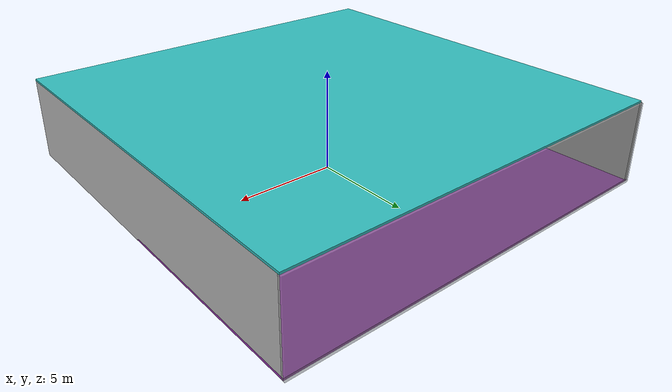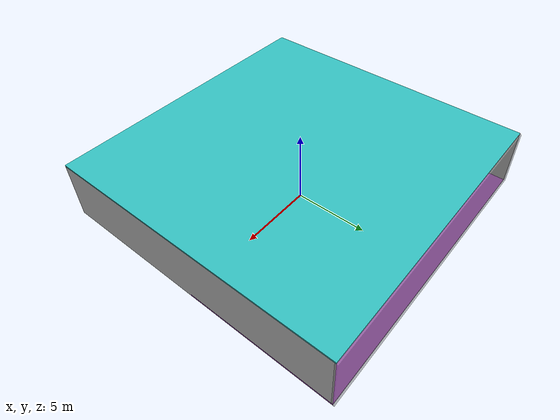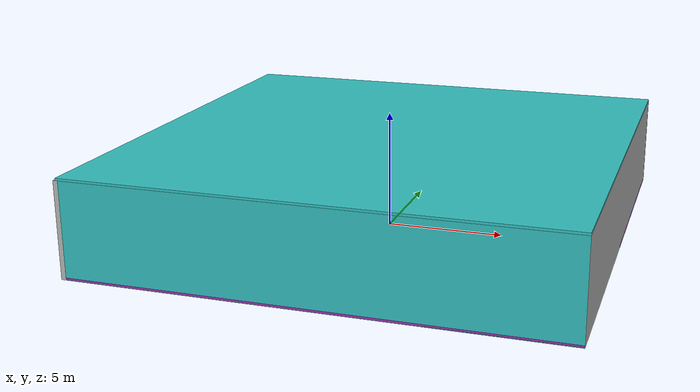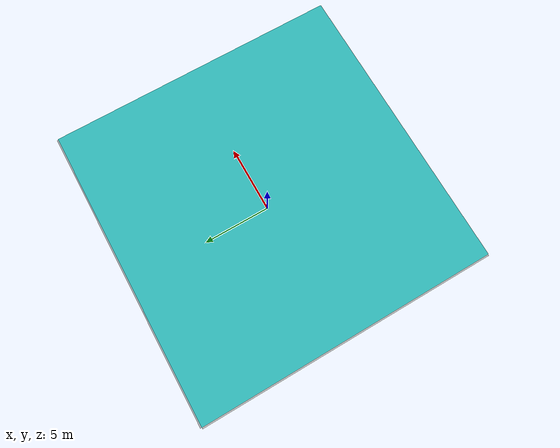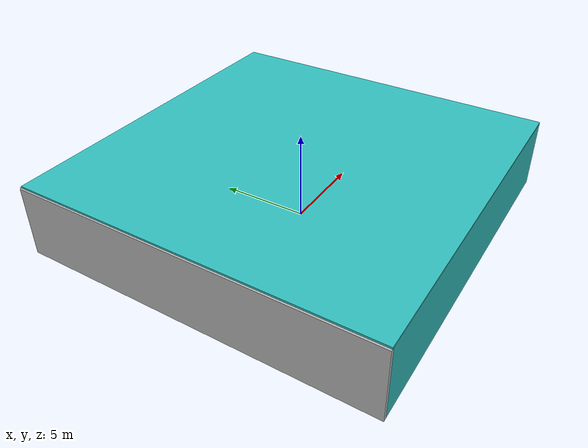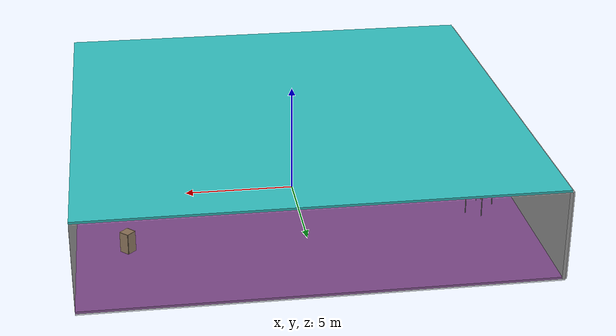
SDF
<sdf version="1.4">
 <world name="default">
  <physics type="ode">
   <max_step_size>0.001</max_step_size>
   <real_time_factor>1</real_time_factor>
   <real_time_update_rate>1000</real_time_update_rate>
   <gravity>0 0 -9.8</gravity>
  </physics>
  <scene><ambient>0.4 0.4 0.4 1</ambient><background>0.7 0.7 0.7 1</background><shadows>1</shadows></scene>
  <model name="Surrounding">
   <static>1</static>
   <link name="Ceiling">
    <collision name="Ceiling_Collision"><geometry><box><size>20 20 0.1</size></box></geometry></collision>
    <visual name="Ceiling_Visual">
     <geometry><box><size>20 20 0.1</size></box></geometry>
     <material>
      <script><uri>file://media/materials/scripts/gazebo.material</uri><name>Gazebo/TurquoiseGlow</name></script>
     </material>
    </visual>
    <pose>0 0 4.05 0 0 0</pose>
   </link>
   <link name="Wall_South">
    <collision name="Wall_South_Collision">
     <geometry><box><size>20 0 4</size></box></geometry>
     <pose>0 0 2 0 -0 0</pose>
    </collision>
    <visual name="Wall_South_Visual">
     <pose>0 0 2 0 -0 0</pose>
     <geometry><box><size>20 0 4</size></box></geometry>
     <material>
      <script><uri>file://media/materials/scripts/gazebo.material</uri><name>Gazebo/TurquoiseGlow</name></script>
     </material>
    </visual>
    <velocity_decay><linear>0</linear><angular>0</angular></velocity_decay>
    <pose>0 -10 0 0 -0 0</pose>
   </link>
   <link name="Wall_East">
    <collision name="Wall_21_Collision">
     <geometry><box><size>20 0 4</size></box></geometry>
     <pose>0 0 2 0 -0 0</pose>
    </collision>
    <visual name="Wall_21_Visual">
     <pose>0 0 2 0 -0 0</pose>
     <geometry><box><size>20 0 4</size></box></geometry>
     <material>
      <script><uri>file://media/materials/scripts/gazebo.material</uri><name>Gazebo/Pioneer2Body</name></script>
     </material>
    </visual>
    <velocity_decay><linear>0</linear><angular>0</angular></velocity_decay>
    <pose>10 0 0 0 -0 1.5708</pose>
   </link>
   <link name="Wall_North">
    <collision name="Wall_22_Collision">
     <geometry><box><size>20 0.2 4</size></box></geometry>
     <pose>0 0 2 0 -0 0</pose>
    </collision>
    <visual name="Wall_22_Visual">
     <pose>0 0 2 0 -0 0</pose>
     <geometry><box><size>20 0.2 4</size></box></geometry>
     <material>
      <script><uri>file://media/materials/scripts/gazebo.material</uri><name>Gazebo/GreyTransparent</name></script>
     </material>
    </visual>
    <velocity_decay><linear>0</linear><angular>0</angular></velocity_decay>
    <pose>0 10 0 0 -0 0</pose>
   </link>
   <link name="Wall_West">
    <collision name="Wall_23_Collision">
     <geometry><box><size>20 0.2 4</size></box></geometry>
     <pose>0 0 2 0 -0 0</pose>
    </collision>
    <visual name="Wall_23_Visual">
     <pose>0 0 2 0 -0 0</pose>
     <geometry><box><size>20 0.2 4</size></box></geometry>
     <material>
      <script><uri>file://media/materials/scripts/gazebo.material</uri><name>Gazebo/LightOn</name></script>
     </material>
    </visual>
    <velocity_decay><linear>0</linear><angular>0</angular></velocity_decay>
    <pose>-10 0 0 0 0 -1.5708</pose>
   </link>
   <link name="Ground_link">
    <collision name="collision">
     <pose>0 0 .05 0 -0 0</pose>
     <geometry><box><size>20 20 0.1</size></box></geometry>
    </collision>
    <visual name="visual">
     <pose>0 0 .05 0 -0 0</pose>
     <geometry><box><size>20 20 0.1</size></box></geometry>
     <material>
      <script><uri>file://media/materials/scripts/gazebo.material</uri><name>Gazebo/PurpleGlow</name></script>
     </material>
    </visual>
   </link>
   <static>1</static>
  </model>
  <spherical_coordinates>
   <surface_model>EARTH_WGS84</surface_model>
   <latitude_deg>0</latitude_deg>
   <longitude_deg>0</longitude_deg>
   <elevation>0</elevation>
   <heading_deg>0</heading_deg>
  </spherical_coordinates>
  <light name="lightball_0" type="diffuse">
   <diffuse>0.8 0.8 0.8 1</diffuse>
   <specular>0.2 0.2 0.2 1</specular>
   <attenuation>
    <range>100</range>
    <constant>0.7</constant>
    <linear>0.01</linear>
    <quadratic>0.001</quadratic>
   </attenuation>
   <direction>-0.5 0.1 -0.9</direction>
   <pose>-0.513120753358 -2.41582941958 1.52443933737 0 0 0</pose>
  </light>
  <light name="lightball_1" type="diffuse">
   <diffuse>0.8 0.8 0.8 1</diffuse>
   <specular>0.2 0.2 0.2 1</specular>
   <attenuation>
    <range>100</range>
    <constant>0.7</constant>
    <linear>0.01</linear>
    <quadratic>0.001</quadratic>
   </attenuation>
   <direction>-0.5 0.1 -0.9</direction>
   <pose>-2.80099224887 -5.0242598981 3.2743007639 0 0 0</pose>
  </light>
  <light name="lightball_2" type="diffuse">
   <diffuse>0.8 0.8 0.8 1</diffuse>
   <specular>0.2 0.2 0.2 1</specular>
   <attenuation>
    <range>100</range>
    <constant>0.7</constant>
    <linear>0.01</linear>
    <quadratic>0.001</quadratic>
   </attenuation>
   <direction>-0.5 0.1 -0.9</direction>
   <pose>-3.60664510113 -2.12445348963 3.07437505596 0 0 0</pose>
  </light>
  <light name="lightball_3" type="diffuse">
   <diffuse>0.8 0.8 0.8 1</diffuse>
   <specular>0.2 0.2 0.2 1</specular>
   <attenuation>
    <range>100</range>
    <constant>0.7</constant>
    <linear>0.01</linear>
    <quadratic>0.001</quadratic>
   </attenuation>
   <direction>-0.5 0.1 -0.9</direction>
   <pose>-6.11513351772 -2.80384891005 2.51624385701 0 0 0</pose>
  </light>
  <include><uri>model://table</uri><pose>-8.09584786456 3.5103178158 0 0 0 0.943489182821</pose></include>
  <include>
   <uri>model://robocup_3Dsim_goal</uri>
   <pose>-0.766539018044 -7.2846070638 0 0 0 2.81664518617</pose>
  </include>
  <include><uri>model://table</uri><pose>4.6423073384 -4.57458047096 0 0 0 1.07236010008</pose></include>
  <include><uri>model://cabinet</uri><pose>7.79199062787 5.31019605774 0 0 0 2.36670926917</pose></include>
 </world>
</sdf>

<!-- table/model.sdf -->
<sdf version="1.5">
  <model name="table">
    <static>true</static>
    <link name="link">
      <collision name="surface">
        <pose>0 0 1.0 0 0 0</pose>
        <geometry>
          <box>
            <size>1.5 0.8 0.03</size>
          </box>
        </geometry>
        <surface>
          <friction>
            <ode>
              <mu>0.6</mu>
              <mu2>0.6</mu2>
            </ode>
          </friction>
        </surface>
      </collision>
      <visual name="visual1">
        <pose>0 0 1.0 0 0 0</pose>
        <geometry>
          <box>
            <size>1.5 0.8 0.03</size>
          </box>
        </geometry>
        <material>
          <script>
            <uri>model://media/materials/scripts/gazebo.material</uri>
            <name>Gazebo/Wood</name>
          </script>
        </material>
      </visual>
      <collision name="front_left_leg">
        <pose>0.68 0.38 0.5 0 0 0</pose>
        <geometry>
          <cylinder>
            <radius>0.02</radius>
            <length>1.0</length>
          </cylinder>
        </geometry>
      </collision>
      <visual name="front_left_leg">
        <pose>0.68 0.38 0.5 0 0 0</pose>
        <geometry>
          <cylinder>
            <radius>0.02</radius>
            <length>1.0</length>
          </cylinder>
        </geometry>
        <material>
          <script>
            <uri>model://media/materials/scripts/gazebo.material</uri>
            <name>Gazebo/Grey</name>
          </script>
        </material>
      </visual>
      <collision name="front_right_leg">
        <pose>0.68 -0.38 0.5 0 0 0</pose>
        <geometry>
          <cylinder>
            <radius>0.02</radius>
            <length>1.0</length>
          </cylinder>
        </geometry>
      </collision>
      <visual name="front_right_leg">
        <pose>0.68 -0.38 0.5 0 0 0</pose>
        <geometry>
          <cylinder>
            <radius>0.02</radius>
            <length>1.0</length>
          </cylinder>
        </geometry>
        <material>
          <script>
            <uri>model://media/materials/scripts/gazebo.material</uri>
            <name>Gazebo/Grey</name>
          </script>
        </material>
      </visual>
      <collision name="back_right_leg">
        <pose>-0.68 -0.38 0.5 0 0 0</pose>
        <geometry>
          <cylinder>
            <radius>0.02</radius>
            <length>1.0</length>
          </cylinder>
        </geometry>
      </collision>
      <visual name="back_right_leg">
        <pose>-0.68 -0.38 0.5 0 0 0</pose>
        <geometry>
          <cylinder>
            <radius>0.02</radius>
            <length>1.0</length>
          </cylinder>
        </geometry>
        <material>
          <script>
            <uri>model://media/materials/scripts/gazebo.material</uri>
            <name>Gazebo/Grey</name>
          </script>
        </material>
      </visual>
      <collision name="back_left_leg">
        <pose>-0.68 0.38 0.5 0 0 0</pose>
        <geometry>
          <cylinder>
            <radius>0.02</radius>
            <length>1.0</length>
          </cylinder>
        </geometry>
      </collision>
      <visual name="back_left_leg">
        <pose>-0.68 0.38 0.5 0 0 0</pose>
        <geometry>
          <cylinder>
            <radius>0.02</radius>
            <length>1.0</length>
          </cylinder>
        </geometry>
        <material>
          <script>
            <uri>model://media/materials/scripts/gazebo.material</uri>
            <name>Gazebo/Grey</name>
          </script>
        </material>
      </visual>
    </link>
  </model>
</sdf>

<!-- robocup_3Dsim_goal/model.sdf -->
<sdf version="1.5">
  <model name="robocup_3d_goal">
    <static>true</static>
    <link name="left_post">
      <pose>0 1.05 0.45 0 0 0</pose>
      <collision name="collision">
        <geometry>
          <cylinder>
            <radius>0.05</radius>
            <length>0.9</length>
          </cylinder>
        </geometry>
      </collision>
      <visual name="visual">
        <geometry>
          <cylinder>
            <radius>0.05</radius>
            <length>0.9</length>
          </cylinder>
        </geometry>
        <material>
          <script>
            <uri>file://media/materials/scripts/gazebo.material</uri>
            <name>Gazebo/ZincYellow</name>
          </script>
        </material>
      </visual>
    </link>
    <link name="left_support_horiz_lower">
      <pose>0.30 1.05 0.01 0 0 0</pose>
      <collision name="collision">
        <geometry>
          <box>
            <size>0.50 0.02 0.02</size>
          </box>
        </geometry>
      </collision>
      <visual name="visual">
        <geometry>
          <box>
            <size>0.50 0.02 0.02</size>
          </box>
        </geometry>
        <material>
          <script>
            <uri>file://media/materials/scripts/gazebo.material</uri>
            <name>Gazebo/White</name>
          </script>
        </material>
      </visual>
    </link>
    <link name="left_support_horiz_upper">
      <pose>0.30 1.05 0.79 0 0 0</pose>
      <collision name="collision">
        <geometry>
          <box>
            <size>0.50 0.02 0.02</size>
          </box>
        </geometry>
      </collision>
      <visual name="visual">
        <geometry>
          <box>
            <size>0.50 0.02 0.02</size>
          </box>
        </geometry>
        <material>
          <script>
            <uri>file://media/materials/scripts/gazebo.material</uri>
            <name>Gazebo/White</name>
          </script>
        </material>
      </visual>
    </link>
    <link name="left_support_vertical">
      <pose>0.56 1.05 0.4 0 1.5708 0</pose>
      <collision name="collision">
        <geometry>
          <box>
            <size>0.80 0.02 0.02</size>
          </box>
        </geometry>
      </collision>
      <visual name="visual">
        <geometry>
          <box>
            <size>0.80 0.02 0.02</size>
          </box>
        </geometry>
        <material>
          <script>
            <uri>file://media/materials/scripts/gazebo.material</uri>
            <name>Gazebo/White</name>
          </script>
        </material>
      </visual>
    </link>
    <link name="right_support_horiz_lower">
      <pose>0.30 -1.05 0.01 0 0 0</pose>
      <collision name="collision">
        <geometry>
          <box>
            <size>0.50 0.02 0.02</size>
          </box>
        </geometry>
      </collision>
      <visual name="visual">
        <geometry>
          <box>
            <size>0.50 0.02 0.02</size>
          </box>
        </geometry>
        <material>
          <script>
            <uri>file://media/materials/scripts/gazebo.material</uri>
            <name>Gazebo/White</name>
          </script>
        </material>
      </visual>
    </link>
    <link name="right_support_horiz_upper">
      <pose>0.30 -1.05 0.79 0 0 0</pose>
      <collision name="collision">
        <geometry>
          <box>
            <size>0.50 0.02 0.02</size>
          </box>
        </geometry>
      </collision>
      <visual name="visual">
        <geometry>
          <box>
            <size>0.50 0.02 0.02</size>
          </box>
        </geometry>
        <material>
          <script>
            <uri>file://media/materials/scripts/gazebo.material</uri>
            <name>Gazebo/White</name>
          </script>
        </material>
      </visual>
    </link>
    <link name="right_support_vertical">
      <pose>0.56 -1.05 0.4 0 1.5708 0</pose>
      <collision name="collision">
        <geometry>
          <box>
            <size>0.80 0.02 0.02</size>
          </box>
        </geometry>
      </collision>
      <visual name="visual">
        <geometry>
          <box>
            <size>0.80 0.02 0.02</size>
          </box>
        </geometry>
        <material>
          <script>
            <uri>file://media/materials/scripts/gazebo.material</uri>
            <name>Gazebo/White</name>
          </script>
        </material>
      </visual>
    </link>
    <link name="center_support_horiz_lower">
      <pose>0.56 0 0.01 0 1.5708 0</pose>
      <collision name="collision">
        <geometry>
          <box>
            <size>0.02 2.08 0.02</size>
          </box>
        </geometry>
      </collision>
      <visual name="visual">
        <geometry>
          <box>
            <size>0.02 2.08 0.02</size>
          </box>
        </geometry>
        <material>
          <script>
            <uri>file://media/materials/scripts/gazebo.material</uri>
            <name>Gazebo/White</name>
          </script>
        </material>
      </visual>
    </link>
    <link name="center_support_horiz_upper">
      <pose>0.56 0 0.79 0 1.5708 0</pose>
      <collision name="collision">
        <geometry>
          <box>
            <size>0.02 2.08 0.02</size>
          </box>
        </geometry>
      </collision>
      <visual name="visual">
        <geometry>
          <box>
            <size>0.02 2.08 0.02</size>
          </box>
        </geometry>
        <material>
          <script>
            <uri>file://media/materials/scripts/gazebo.material</uri>
            <name>Gazebo/White</name>
          </script>
        </material>
      </visual>
    </link>
    <link name="right_post">
      <pose>0 -1.05 0.45 0 0 0</pose>
      <collision name="collision">
        <geometry>
          <cylinder>
            <radius>0.05</radius>
            <length>0.9</length>
          </cylinder>
        </geometry>
      </collision>
      <visual name="visual">
        <geometry>
          <cylinder>
            <radius>0.05</radius>
            <length>0.9</length>
          </cylinder>
        </geometry>
        <material>
          <script>
            <uri>file://media/materials/scripts/gazebo.material</uri>
            <name>Gazebo/ZincYellow</name>
          </script>
        </material>
      </visual>
    </link>
    <link name="crossbar">
      <pose>0 0 0.85 1.57 1.57 0</pose>
      <collision name="collision">
        <geometry>
          <cylinder>
            <radius>0.05</radius>
            <length>2.0</length>
          </cylinder>
        </geometry>
      </collision>
      <visual name="visual">
        <geometry>
          <cylinder>
            <radius>0.05</radius>
            <length>2.0</length>
          </cylinder>
        </geometry>
        <material>
          <script>
            <uri>file://media/materials/scripts/gazebo.material</uri>
            <name>Gazebo/ZincYellow</name>
          </script>
        </material>
      </visual>
    </link>
    <link name="center_net">
      <pose>0.56 0 0.40 0 0 0</pose>
      <collision name="collision">
        <geometry>
          <box>
            <size>0.01 2.1 0.80</size>
          </box>
        </geometry>
      </collision>
      <visual name="visual">
        <geometry>
          <box>
            <size>0.01 2.1 0.80</size>
          </box>
        </geometry>
        <material>
          <script>
            <uri>model://../model_source/models/robocup09_spl_field/materials/scripts/</uri>
            <uri>model://../model_source/models/robocup09_spl_field/materials/textures/</uri>
            <name>RoboCup/Net</name>
          </script>
        </material>
      </visual>
    </link>
    <link name="left_net">
      <pose>0.30 1.05 0.40 0 0 0</pose>
      <collision name="collision">
        <geometry>
          <box>
            <size>0.50 0.01 0.76</size>
          </box>
        </geometry>
      </collision>
      <visual name="visual">
        <geometry>
          <box>
            <size>0.50 0.01 0.76</size>
          </box>
        </geometry>
        <material>
          <script>
            <uri>model://../model_source/models/robocup09_spl_field/materials/scripts/</uri>
            <uri>model://../model_source/models/robocup09_spl_field/materials/textures/</uri>
            <name>RoboCup/Net</name>
          </script>
        </material>
      </visual>
    </link>
    <link name="right_net">
      <pose>0.30 -1.05 0.40 0 0 0</pose>
      <collision name="collision">
        <geometry>
          <box>
            <size>0.50 0.01 0.76</size>
          </box>
        </geometry>
      </collision>
      <visual name="visual">
        <geometry>
          <box>
            <size>0.50 0.01 0.76</size>
          </box>
        </geometry>
        <material>
          <script>
            <uri>model://../model_source/models/robocup09_spl_field/materials/scripts/</uri>
            <uri>model://../model_source/models/robocup09_spl_field/materials/textures/</uri>
            <name>RoboCup/Net</name>
          </script>
        </material>
      </visual>
    </link>
  </model>
</sdf>

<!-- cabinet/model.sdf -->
<sdf version="1.5">
  <model name="cabinet">
    <static>true</static>
    <link name="cabinet_bottom_plate">
      <inertial>
        <pose>0 0 -1 0 0 0</pose>
        <inertia>
          <ixx>2.050000</ixx>
          <ixy>0</ixy>
          <ixz>0</ixz>
          <iyy>2.050000</iyy>
          <iyz>0</iyz>
          <izz>2.050000</izz>
        </inertia>
        <mass>25.000000</mass>
      </inertial>
      <collision name="cabinet_bottom_plate_geom">
        <pose>0 0 0.010000 0 0 0</pose>
        <geometry>
          <box>
            <size>0.450000 0.450000 0.020000</size>
          </box>
        </geometry>
      </collision>
      <visual name="cabinet_bottom_plate_geom_visual">
        <pose>0 0 0.010000 0 0 0</pose>
        <geometry>
          <box>
            <size>0.450000 0.450000 0.020000</size>
          </box>
        </geometry>
        <material>
          <script>
            <uri>model://media/materials/scripts/gazebo.material</uri>
            <name>Gazebo/Wood</name>
          </script>
        </material>
      </visual>
      <collision name="cabinet_bottom_plate_geom_cabinet_back_plate">
        <pose>0.235000 0 0.510000 0 0 0</pose>
        <geometry>
          <box>
            <size>0.020000 0.450000 1.020000</size>
          </box>
        </geometry>
      </collision>
      <visual name="cabinet_bottom_plate_geom_cabinet_back_plate_visual">
        <pose>0.235000 0 0.510000 0 0 0</pose>
        <geometry>
          <box>
            <size>0.020000 0.450000 1.020000</size>
          </box>
        </geometry>
        <material>
          <script>
            <uri>model://media/materials/scripts/gazebo.material</uri>
            <name>Gazebo/Wood</name>
          </script>
        </material>
      </visual>
      <collision name="cabinet_bottom_plate_geom_cabinet_left_plate">
        <pose>0 0.235000 0.510000 0 0 0</pose>
        <geometry>
          <box>
            <size>0.450000 0.020000 1.020000</size>
          </box>
        </geometry>
      </collision>
      <visual name="cabinet_bottom_plate_geom_cabinet_left_plate_visual">
        <pose>0 0.235000 0.510000 0 0 0</pose>
        <geometry>
          <box>
            <size>0.450000 0.020000 1.020000</size>
          </box>
        </geometry>
        <material>
          <script>
            <uri>model://media/materials/scripts/gazebo.material</uri>
            <name>Gazebo/Wood</name>
          </script>
        </material>
      </visual>
      <collision name="cabinet_bottom_plate_geom_cabinet_middle_plate">
        <pose>0 0 0.510000 0 0 0</pose>
        <geometry>
          <box>
            <size>0.450000 0.450000 0.020000</size>
          </box>
        </geometry>
      </collision>
      <visual name="cabinet_bottom_plate_geom_cabinet_middle_plate_visual">
        <pose>0 0 0.510000 0 0 0</pose>
        <geometry>
          <box>
            <size>0.450000 0.450000 0.020000</size>
          </box>
        </geometry>
        <material>
          <script>
            <uri>model://media/materials/scripts/gazebo.material</uri>
            <name>Gazebo/Wood</name>
          </script>
        </material>
      </visual>
      <collision name="cabinet_bottom_plate_geom_cabinet_right_plate">
        <pose>0 -0.235000 0.510000 0 0 0</pose>
        <geometry>
          <box>
            <size>0.450000 0.020000 1.020000</size>
          </box>
        </geometry>
      </collision>
      <visual name="cabinet_bottom_plate_geom_cabinet_right_plate_visual">
        <pose>0 -0.235000 0.510000 0 0 0</pose>
        <geometry>
          <box>
            <size>0.450000 0.020000 1.020000</size>
          </box>
        </geometry>
        <material>
          <script>
            <uri>model://media/materials/scripts/gazebo.material</uri>
            <name>Gazebo/Wood</name>
          </script>
        </material>
      </visual>
      <collision name="cabinet_bottom_plate_geom_cabinet_top_plate">
        <pose>0 0 1.010000 0 0 0</pose>
        <geometry>
          <box>
            <size>0.450000 0.450000 0.020000</size>
          </box>
        </geometry>
      </collision>
      <visual name="cabinet_bottom_plate_geom_cabinet_top_plate_visual">
        <pose>0 0 1.010000 0 0 0</pose>
        <geometry>
          <box>
            <size>0.450000 0.450000 0.020000</size>
          </box>
        </geometry>
        <material>
          <script>
            <uri>model://media/materials/scripts/gazebo.material</uri>
            <name>Gazebo/Wood</name>
          </script>
        </material>
      </visual>
    </link>
  </model>
</sdf>
